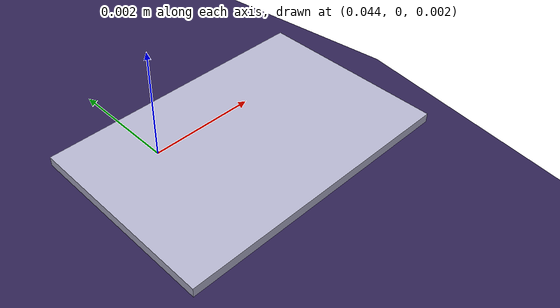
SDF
<?xml version='1.0' encoding='utf-8'?>
<sdf version="1.9">
  <model name="wafer">
    <static>false</static>
    <self_collide>true</self_collide>
    <link name="body">
      <pose>0 0 0 0 0 0</pose>
      <inertial>
        <mass>0.02</mass>
        <inertia>
          <ixx>1.667333333333334e-05</ixx>
          <iyy>1.667333333333334e-05</iyy>
          <izz>3.333333333333334e-05</izz>
          <ixy>0</ixy>
          <ixz>0</ixz>
          <iyz>0</iyz>
        </inertia>
      </inertial>
      <visual name="silicon">
        <pose>0 0 0 0 0 0</pose>
        <geometry>
          <cylinder>
            <radius>0.05</radius>
            <length>0.002</length>
          </cylinder>
        </geometry>
        <material>
          <ambient>0.18 0.13 0.32 1</ambient>
          <diffuse>0.18 0.13 0.32 1</diffuse>
        </material>
      </visual>
      <collision name="silicon_collision">
        <pose>0 0 0 0 0 0</pose>
        <geometry>
          <cylinder>
            <radius>0.05</radius>
            <length>0.002</length>
          </cylinder>
        </geometry>
        <surface>
          <friction>
            <ode>
              <mu>0.9</mu>
              <mu2>0.9</mu2>
            </ode>
          </friction>
        </surface>
      </collision>
      <visual name="orientation_notch">
        <pose>0.046 0 0.0011 0 0 0</pose>
        <geometry>
          <box>
            <size>0.006 0.004 0.0002</size>
          </box>
        </geometry>
        <material>
          <ambient>0.7 0.7 0.8 1</ambient>
          <diffuse>0.7 0.7 0.8 1</diffuse>
        </material>
      </visual>
    </link>
    <plugin filename="gz-sim-pose-publisher-system" name="gz::sim::systems::PosePublisher">
      <publish_link_pose>false</publish_link_pose>
      <publish_model_pose>true</publish_model_pose>
      <publish_nested_model_pose>false</publish_nested_model_pose>
      <use_pose_vector_msg>false</use_pose_vector_msg>
      <update_frequency>30</update_frequency>
      <topic>/poses/wafer</topic>
    </plugin>
  </model>
</sdf>
